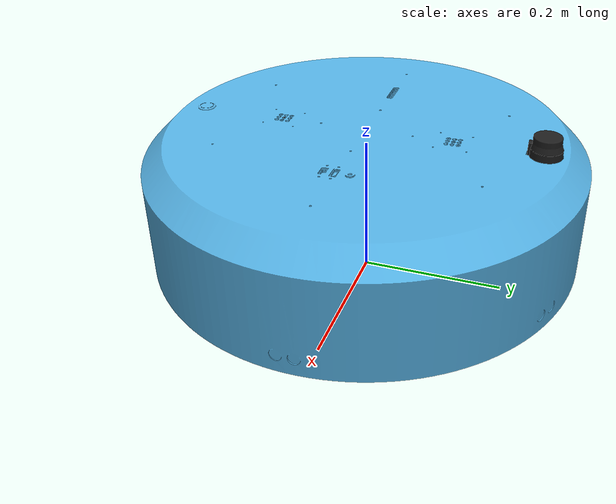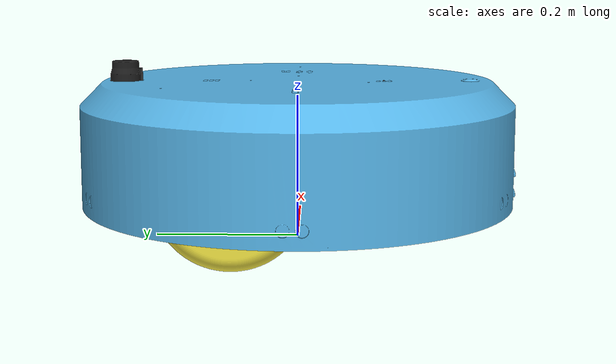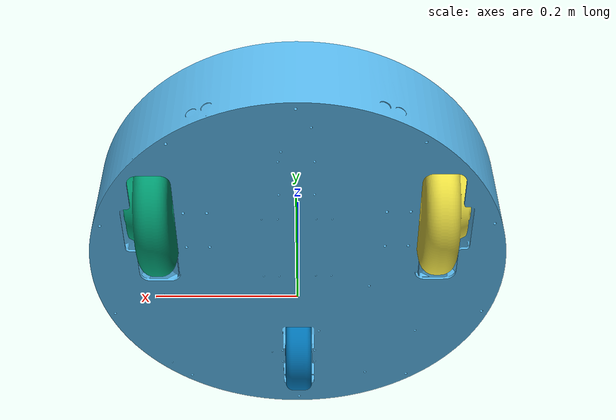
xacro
<?xml version='1.0'?>

<robot name="chassis_p1" xmlns:xacro="http://ros.org/wiki/xacro">

  <link name='base_link' />

  <link name='base_footprint'>

    <visual name='base_footprint_visual'>
      <origin xyz="0 0 0" rpy="0 0 0"/>
      <geometry>
	      <mesh filename="package://aibot_description/meshes/p1/car_body.stl" scale="0.001 0.001 0.001"/>
      </geometry>
    </visual>

    <collision name='collision_body'>
    <origin xyz="0 0 0.085" rpy="0 0 0"/>
      <geometry>
        <cylinder radius="0.3" length="0.17"/>
      </geometry>
    </collision>

  </link>

  <joint name="base_footprint_joint" type="fixed" >
    <origin xyz="0 0 0.052" rpy="0 0 0"/>
    <child link="base_footprint"/>
    <parent link="base_link"/>
  </joint>

  <link name="front_left_wheel">

    <visual name="front_left_wheel_visual">
      <origin xyz="0 0 0" rpy="0 0 -1.5707"/>
      <geometry>
        <mesh filename="package://aibot_description/meshes/p1/wheel.stl" scale="0.001 0.001 0.001"/>
      </geometry>
    </visual>

    <collision name="collision_front_left_wheel">
      <origin xyz="0.025 0 0" rpy="0 1.5707 0"/>
      <geometry>
        <cylinder radius="0.1" length="0.05"/>
      </geometry>
    </collision>

  </link>

  <link name="front_right_wheel">

    <visual name="front_right_wheel_visual">
      <origin xyz="0 0 0.0" rpy="0 0 1.5707"/>
      <geometry>
        <mesh filename="package://aibot_description/meshes/p1/wheel.stl" scale="0.001 0.001 0.001"/>
      </geometry>
    </visual>

    <collision name="collision_front_right_wheel">
      <origin xyz="-0.025 0 0" rpy="0 1.5707 0"/>
      <geometry>
        <cylinder radius="0.1" length="0.05"/>
      </geometry>
    </collision>

  </link>

  <joint name="front_left_wheel_hinge" type="fixed">
    <origin xyz="0.171 0.08 0.05" rpy="0 0 0"/>
    <child link="front_left_wheel"/>
    <parent link="base_footprint"/>
    <axis xyz="0 1 0" rpy="0 0 0"/>
    <limit effort="10000" velocity="1000"/>
    <joint_properties damping="1.0" friction="1.0"/>
  </joint>

  <joint name="front_right_wheel_hinge" type="fixed">
    <origin xyz="-0.171 0.08 0.05" rpy="0 0 0"/>
    <child link="front_right_wheel"/>
    <parent link="base_footprint"/>
    <axis xyz="0 1 0" rpy="0 0 0"/>
    <limit effort="10000" velocity="1000"/>
    <joint_properties damping="1.0" friction="1.0"/>
  </joint>

  <link name="middle_wheel">

    <visual name="middle_wheel_visual">
      <origin xyz="0 0 0.0" rpy="0 0 1.5707"/>
      <geometry>
        <mesh filename="package://aibot_description/meshes/p1/wheel_middle.stl" scale="0.001 0.001 0.001"/>
      </geometry>
    </visual>

    <collision name="collision_middle_wheel">
      <origin xyz="0 0 0" rpy="0 1.5707 0"/>
      <geometry>
        <cylinder radius="0.0635" length="0.04"/>
      </geometry>
    </collision>

  </link>

  <joint name="middle_wheel_hinge" type="fixed">
    <origin xyz="0 -0.19 0.0135" rpy="0 0 0"/>
    <child link="middle_wheel"/>
    <parent link="base_footprint"/>
    <axis xyz="0 1 0" rpy="0 0 0"/>
    <limit effort="10000" velocity="1000"/>
    <joint_properties damping="1.0" friction="1.0"/>
  </joint>

  <link name="laser">

    <visual name="laser_visual">
      <origin xyz="0 0 0" rpy="0 0 0"/>
      <geometry>
        <mesh filename="package://aibot_description/meshes/p1/laser.stl" scale="0.001 0.001 0.001"/>
      </geometry>
      <material name="green_black"/>
    </visual>

    <collision name="collision_laser">
      <origin xyz="0 0 0" rpy="0 0 0"/>
      <geometry>
        <cylinder radius="0.021" length="0.025"/>
      </geometry>
    </collision>

  </link>

  <joint name="laser_joint" type="fixed">
    <axis xyz="0 0 1" />
    <origin xyz="0 0.24 0.183" rpy="0 0 0"/>
    <parent link="base_footprint"/>
    <child link="laser"/>
  </joint>

  <link name="imu_link">

    <visual name="imu_visual">
      <origin xyz="0 0 0" rpy="0 0 0"/>
      <geometry>
        <cylinder radius="0.001" length="0.001"/>
      </geometry>
      <material name="black"/>
    </visual>

  </link>

  <joint name="imu_joint" type="fixed">
    <origin xyz="0.0045 0.1764 0.011" rpy="0 0 0"/>
    <parent link="base_footprint"/>
    <child link="imu_link"/>
  </joint>

  <link name="extend_back_link">

    <visual name="extend_visual">
      <origin xyz="0 0 0" rpy="0 0 0"/>
      <geometry>
        <cylinder radius="0.001" length="0.001"/>
      </geometry>
      <material name="green_black"/>
    </visual>

  </link>

  <joint name="extend_back_link_joint" type="fixed">
    <origin xyz="0 -0.12 0.169" rpy="0 0 0"/>
    <parent link="base_footprint"/>
    <child link="extend_back_link"/>
  </joint>

</robot>
